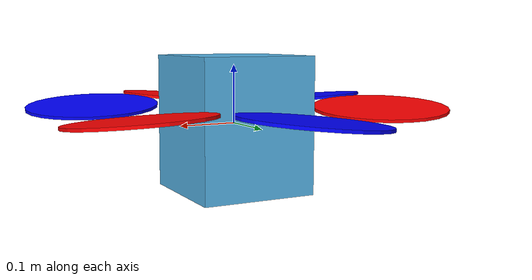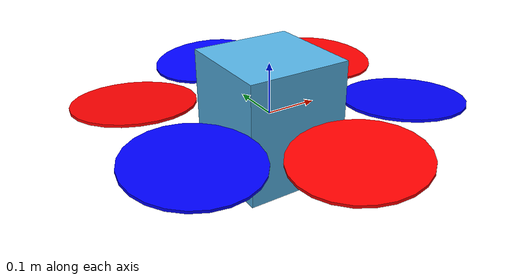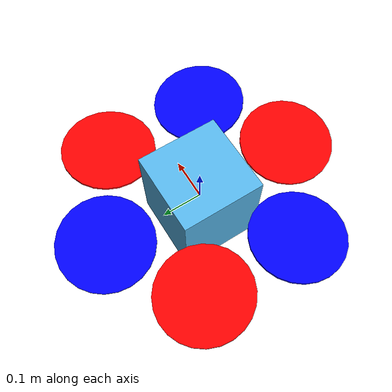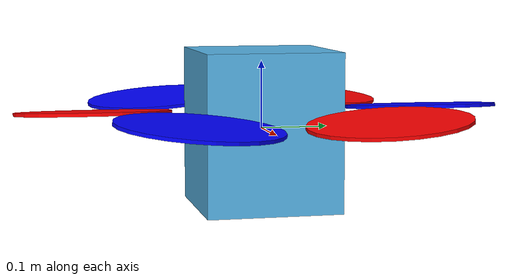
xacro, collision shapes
<?xml version="1.0"?>

<robot name="neo9" xmlns:xacro="http://ros.org/wiki/xacro">

  <!-- Included URDF Files -->
  <xacro:include filename="$(find tobas_description)/urdf/components/multirotor_base.xacro"/>

  <!-- Properties -->
  <xacro:property name="namespace" value="neo9"/>
  <xacro:property name="use_mesh_file" value="true"/>
  <xacro:property name="mesh_file" value="package://tobas_description/meshes/neo9.dae"/>
  <xacro:property name="mass" value="2.662"/> <!-- [kg] -->
  <xacro:property name="body_width" value="0.2"/>
  <xacro:property name="body_height" value="0.234"/>
  <xacro:property name="mass_rotor" value="0.005"/> <!-- [kg] -->
  <xacro:property name="arm_length" value="0.2495"/>
  <xacro:property name="rotor_offset_top" value="0.028"/>
  <xacro:property name="radius_rotor" value="0.1143"/>
  <xacro:property name="front_propeller_x" value="0.213"/>
  <xacro:property name="front_propeller_y" value="0.12988"/>
  <xacro:property name="side_propeller_x" value="-0.00067"/>
  <xacro:property name="side_propeller_y" value="0.24939"/>
  <xacro:property name="back_propeller_x" value="-0.21561"/>
  <xacro:property name="back_propeller_y" value="0.12535"/>

  <!-- Property Blocks -->
  <xacro:property name="body_inertia">
    <inertia ixx="0.0331" ixy="0.0" ixz="0.0" iyy="0.0350" iyz="0.0" izz="0.0605"/> <!-- [kg m^2] -->
  </xacro:property>

  <!-- inertia of a single rotor, assuming it is a cuboid. Height=3mm, width=15mm -->
  <xacro:property name="rotor_inertia">
    <xacro:box_inertia x="${radius_rotor}" y="0.015" z="0.003" mass="${mass_rotor}"/>
  </xacro:property>

  <!-- Instantiate multirotor_base_macro once -->
  <xacro:multirotor_base_macro
    robot_namespace="${namespace}"
    mass="${mass}"
    body_width="${body_width}"
    body_height="${body_height}"
    use_mesh_file="${use_mesh_file}"
    mesh_file="${mesh_file}">
    <xacro:insert_block name="body_inertia"/>
  </xacro:multirotor_base_macro>

  <!-- Instantiate rotors -->
  <xacro:vertical_rotor
    robot_namespace="${namespace}"
    direction="ccw"
    parent="${namespace}/base_link"
    mass_rotor="${mass_rotor}"
    radius_rotor="${radius_rotor}"
    motor_number="0"
    use_own_mesh="true"
    mesh="package://tobas_description/meshes/neo9_propeller_ccw.dae">
    <origin xyz="${front_propeller_x} ${front_propeller_y} ${rotor_offset_top}" rpy="${5*pi/180} 0 ${30*pi/180}"/>
    <xacro:insert_block name="rotor_inertia"/>
    <xacro:insert_block name="red"/>
  </xacro:vertical_rotor>

  <xacro:vertical_rotor
    robot_namespace="${namespace}"
    direction="cw"
    parent="${namespace}/base_link"
    mass_rotor="${mass_rotor}"
    radius_rotor="${radius_rotor}"
    motor_number="1"
    use_own_mesh="true"
    mesh="package://tobas_description/meshes/neo9_propeller_cw.dae">
    <origin xyz="${side_propeller_x} ${side_propeller_y} ${rotor_offset_top}" rpy="0 ${-5*pi/180} 0"/>
    <xacro:insert_block name="rotor_inertia"/>
    <xacro:insert_block name="blue"/>
  </xacro:vertical_rotor>

  <xacro:vertical_rotor
    robot_namespace="${namespace}"
    direction="ccw"
    parent="${namespace}/base_link"
    mass_rotor="${mass_rotor}"
    radius_rotor="${radius_rotor}"
    motor_number="2"
    use_own_mesh="true"
    mesh="package://tobas_description/meshes/neo9_propeller_ccw.dae">
    <origin xyz="${back_propeller_x} ${back_propeller_y} ${rotor_offset_top}" rpy="${5*pi/180} 0 ${150*pi/180}"/>
    <xacro:insert_block name="rotor_inertia"/>
    <xacro:insert_block name="red"/>
  </xacro:vertical_rotor>

  <xacro:vertical_rotor
    robot_namespace="${namespace}"
    direction="cw"
    parent="${namespace}/base_link"
    mass_rotor="${mass_rotor}"
    radius_rotor="${radius_rotor}"
    motor_number="3"
    use_own_mesh="true"
    mesh="package://tobas_description/meshes/neo9_propeller_cw.dae">
    <origin xyz="${back_propeller_x} -${back_propeller_y} ${rotor_offset_top}" rpy="${-5*pi/180} 0 ${-150*pi/180}"/>
    <xacro:insert_block name="rotor_inertia"/>
    <xacro:insert_block name="blue"/>
  </xacro:vertical_rotor>

  <xacro:vertical_rotor
    robot_namespace="${namespace}"
    direction="ccw"
    parent="${namespace}/base_link"
    mass_rotor="${mass_rotor}"
    radius_rotor="${radius_rotor}"
    motor_number="4"
    use_own_mesh="true"
    mesh="package://tobas_description/meshes/neo9_propeller_ccw.dae">
    <origin xyz="${side_propeller_x} -${side_propeller_y} ${rotor_offset_top}" rpy="0 ${5*pi/180} ${pi}"/>
    <xacro:insert_block name="rotor_inertia"/>
    <xacro:insert_block name="red"/>
  </xacro:vertical_rotor>

  <xacro:vertical_rotor
    robot_namespace="${namespace}"
    direction="cw"
    parent="${namespace}/base_link"
    mass_rotor="${mass_rotor}"
    radius_rotor="${radius_rotor}"
    motor_number="5"
    use_own_mesh="true"
    mesh="package://tobas_description/meshes/neo9_propeller_cw.dae">
    <origin xyz="${front_propeller_x} -${front_propeller_y} ${rotor_offset_top}" rpy="${-5*pi/180} 0 ${-30*pi/180}"/>
    <xacro:insert_block name="rotor_inertia"/>
    <xacro:insert_block name="blue"/>
  </xacro:vertical_rotor>

</robot>

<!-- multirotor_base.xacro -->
<robot xmlns:xacro="http://ros.org/wiki/xacro">

  <xacro:include filename="$(find tobas_description)/urdf/components/common.xacro"/>

  <!-- Main multirotor link -->
  <xacro:macro name="multirotor_base_macro" params="
      robot_namespace
      mass
      body_width
      body_height
      use_mesh_file
      mesh_file
      *inertia">
    <link name="${robot_namespace}/base_link"></link>

    <joint name="${robot_namespace}/base_joint" type="fixed">
      <origin xyz="0 0 0" rpy="0 0 0"/>
      <parent link="${robot_namespace}/base_link"/>
      <child link="${robot_namespace}/base_link_inertia"/>
    </joint>

    <link name="${robot_namespace}/base_link_inertia">
      <inertial>
        <mass value="${mass}"/>
        <origin xyz="0 0 0"/>
        <xacro:insert_block name="inertia"/>
      </inertial>

      <visual>
        <origin xyz="0 0 0" rpy="0 0 0"/>
        <geometry>
          <xacro:if value="${use_mesh_file}">
            <mesh filename="${mesh_file}" scale="1 1 1"/>
          </xacro:if>
          <xacro:unless value="${use_mesh_file}">
            <box size="${body_width} ${body_width} ${body_height}"/>
          </xacro:unless>
        </geometry>
      </visual>

      <collision>
        <origin xyz="0 0 0" rpy="0 0 0"/>
        <geometry>
          <box size="${body_width} ${body_width} ${body_height}"/>
        </geometry>
      </collision>
    </link>
  </xacro:macro>

  <!-- Rotor joint and link -->
  <xacro:macro name="vertical_rotor" params="
      robot_namespace
      direction
      parent
      mass_rotor
      radius_rotor
      motor_number
      use_own_mesh
      mesh
      *origin
      *inertia
      *material">
    <joint name="${robot_namespace}/rotor_${motor_number}_joint" type="continuous">
      <xacro:insert_block name="origin"/>
      <axis xyz="0 0 1"/>
      <parent link="${parent}"/>
      <child link="${robot_namespace}/rotor_${motor_number}"/>
    </joint>

    <link name="${robot_namespace}/rotor_${motor_number}">
      <inertial>
        <mass value="${mass_rotor}"/>
        <xacro:insert_block name="inertia"/>
      </inertial>
      <visual>
        <geometry>
          <xacro:if value="${use_own_mesh}">
            <mesh filename="${mesh}" scale="1 1 1"/>
          </xacro:if>
          <xacro:unless value="${use_own_mesh}">
            <mesh filename="package://tobas_description/meshes/propeller_${direction}.dae" scale="${radius_rotor} ${radius_rotor} ${radius_rotor}"/>
          </xacro:unless>
        </geometry>
        <xacro:insert_block name="material"/>
      </visual>
      <collision>
        <geometry>
          <cylinder length="0.005" radius="${radius_rotor}"/>
        </geometry>
      </collision>
    </link>
  </xacro:macro>

  <!-- Virtual frame for visualization -->
  <xacro:macro name="virtual_frame" params="parent name *origin">
    <joint name="${name}_joint" type="fixed">
      <xacro:insert_block name="origin"/>
      <parent link="${parent}"/>
      <child link="${name}_link"/>
    </joint>

    <link name="${name}_link">
      <inertial>
        <mass value="1e-9"/>
        <inertia ixx="1e-9" ixy="0" ixz="0" iyy="1e-9" iyz="0" izz="1e-9"/>
      </inertial>
      <visual>
        <geometry>
          <box size="1e-3 1e-3 1e-3"/>
        </geometry>
        <xacro:insert_block name="red"/>
      </visual>
      <collision>
        <geometry>
          <box size="1e-3 1e-3 1e-3"/>
        </geometry>
      </collision>
    </link>
  </xacro:macro>

</robot>

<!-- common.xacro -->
<robot xmlns:xacro="http://ros.org/wiki/xacro">

  <!-- Constants -->
  <xacro:property name="sqrt2" value="1.4142135623730951"/>
  <xacro:property name="sqrt3" value="1.73205080757"/>
  <xacro:property name="sin30" value="0.5"/>
  <xacro:property name="cos30" value="${sqrt3 / 2}"/>
  <xacro:property name="sin45" value="${1 / sqrt2}"/>
  <xacro:property name="cos45" value="${sin45}"/>
  <xacro:property name="sin60" value="${cos30}"/>
  <xacro:property name="cos60" value="${sin30}"/>
  <xacro:property name="deg2rad" value="${pi / 180}"/>
  <xacro:property name="rad2deg" value="${180 / pi}"/>
  <xacro:property name="inch2meter" value="0.0254"/>

  <!-- Colors -->
  <xacro:property name="black">
    <material name="black">
      <color rgba="0 0 0 1"/>
    </material>
  </xacro:property>
  <xacro:property name="white">
    <material name="white">
      <color rgba="1 1 1 1"/>
    </material>
  </xacro:property>
  <xacro:property name="gray">
    <material name="gray">
      <color rgba="0.5 0.5 0.5 1"/>
    </material>
  </xacro:property>
  <xacro:property name="red">
    <material name="red">
      <color rgba="1 0 0 1"/>
    </material>
  </xacro:property>
  <xacro:property name="green">
    <material name="green">
      <color rgba="0 1 0 1"/>
    </material>
  </xacro:property>
  <xacro:property name="blue">
    <material name="blue">
      <color rgba="0 0 1 1"/>
    </material>
  </xacro:property>
  <xacro:property name="yellow">
    <material name="yellow">
      <color rgba="1 1 0 1"/>
    </material>
  </xacro:property>
  <xacro:property name="orange">
    <material name="orange">
      <color rgba="${255/255} ${108/255} ${10/255} 1"/>
    </material>
  </xacro:property>
  <xacro:property name="brown">
    <material name="brown">
      <color rgba="${222/255} ${207/255} ${195/255} 1"/>
    </material>
  </xacro:property>

  <!-- Collisions -->
  <xacro:macro name="hexagonal_prism_collision" params="side height x0 y0 z0">
    <collision>
      <origin xyz="${x0} ${y0} ${z0}" rpy="0 0 0"/>
      <geometry>
        <box size="${sqrt3 * side} ${side} ${height}"/>
      </geometry>
    </collision>
    <collision>
      <origin xyz="${x0} ${y0} ${z0}" rpy="0 0 ${60*deg2rad}"/>
      <geometry>
        <box size="${sqrt3 * side} ${side} ${height}"/>
      </geometry>
    </collision>
    <collision>
      <origin xyz="${x0} ${y0} ${z0}" rpy="0 0 ${-60*deg2rad}"/>
      <geometry>
        <box size="${sqrt3 * side} ${side} ${height}"/>
      </geometry>
    </collision>
  </xacro:macro>

  <!-- Inertia wrt. CoM of primitive shapes -->
  <xacro:macro name="box_inertia" params="x y z mass">
    <inertia ixx="${mass * (y*y + z*z) / 12}" ixy="0.0" ixz="0.0" iyy="${mass * (x*x + z*z) / 12}" iyz="0.0" izz="${mass * (x*x + y*y) / 12}"/>
  </xacro:macro>
  <xacro:macro name="cylinder_inertia" params="radius length mass">
    <inertia ixx="${mass*radius*radius/4 + mass*length*length/12}" ixy="0.0" ixz="0.0" iyy="${mass*radius*radius/4 + mass*length*length/12}" iyz="0.0" izz="${mass*radius*radius/2}"/>
  </xacro:macro>
  <xacro:macro name="sphere_inertia" params="radius mass">
    <inertia ixx="${0.4 * mass * radius*radius}" ixy="0.0" ixz="0.0" iyy="${0.4 * mass * radius*radius}" iyz="0.0" izz="${0.4 * mass * radius*radius}"/>
  </xacro:macro>

  <!-- Macro for the inertial properties of a box -->
  <xacro:macro name="box_inertial" params="x y z mass *origin">
    <inertial>
      <mass value="${mass}"/>
      <xacro:insert_block name="origin"/>
      <xacro:box_inertia x="${x}" y="${y}" z="${z}" mass="${mass}"/>
    </inertial>
  </xacro:macro>

</robot>
